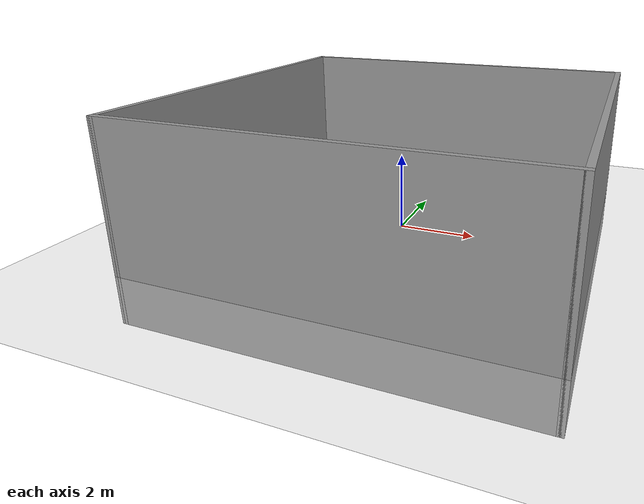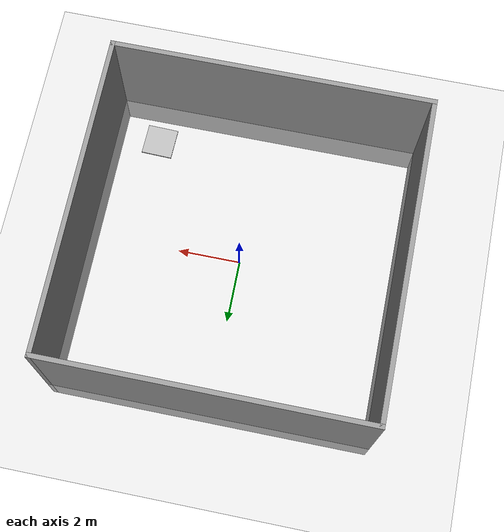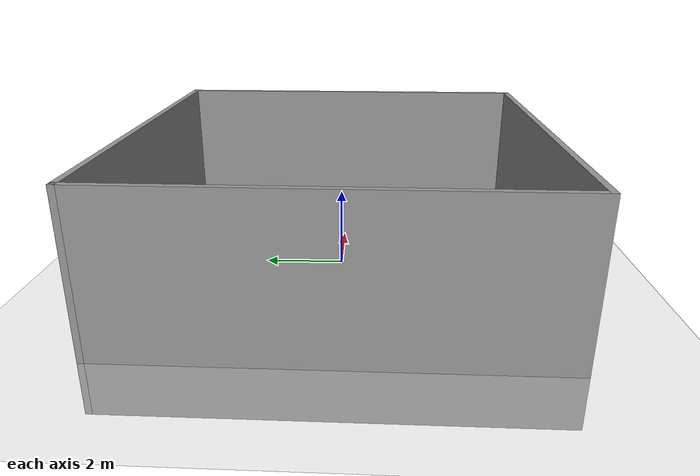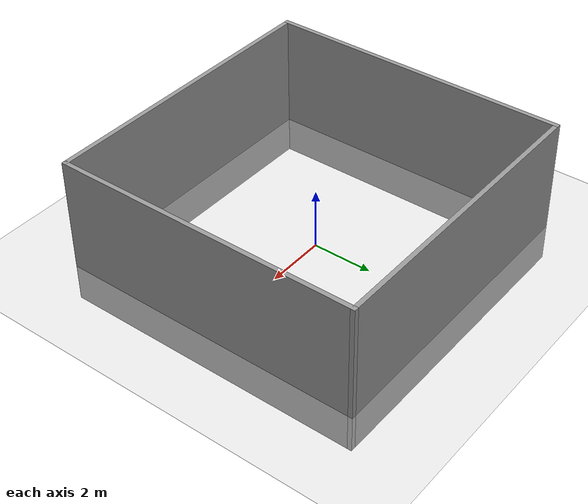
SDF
<sdf version="1.7">
 <world name="default">
  <model name="ground_plane">
   <static>1</static>
   <link name="link">
    <collision name="collision">
     <geometry><plane><normal>0 0 1</normal><size>100 100</size></plane></geometry>
     <surface><friction><ode><mu>100</mu><mu2>50</mu2></ode></friction></surface>
    </collision>
    <visual name="visual">
     <cast_shadows>0</cast_shadows>
     <geometry><plane><normal>0 0 1</normal><size>100 100</size></plane></geometry>
     <material>
      <script><uri>file://media/materials/scripts/gazebo.material</uri><name>Gazebo/Grey</name></script>
     </material>
    </visual>
   </link>
  </model>
  <model name="Indoor_emptyroom">
   <link name="Wall_31">
    <collision name="Wall_31_Collision">
     <geometry><box><size>10.15 0.15 5</size></box></geometry>
     <pose>0 0 1.25 0 -0 0</pose>
    </collision>
    <visual name="Wall_31_Visual">
     <pose>0 0 1.25 0 -0 0</pose>
     <geometry><box><size>10.15 0.15 5</size></box></geometry>
     <material>
      <script><uri>file://media/materials/scripts/gazebo.material</uri><name>Gazebo/Grey</name></script>
      <ambient>1 1 1 1</ambient>
     </material>
     <meta><layer>0</layer></meta>
    </visual>
    <pose>0 -5 0 0 -0 0</pose>
   </link>
   <link name="Wall_32">
    <collision name="Wall_32_Collision">
     <geometry><box><size>10.15 0.15 5</size></box></geometry>
     <pose>0 0 1.25 0 -0 0</pose>
    </collision>
    <visual name="Wall_32_Visual">
     <pose>0 0 1.25 0 -0 0</pose>
     <geometry><box><size>10.15 0.15 5</size></box></geometry>
     <material>
      <script><uri>file://media/materials/scripts/gazebo.material</uri><name>Gazebo/Grey</name></script>
      <ambient>1 1 1 1</ambient>
     </material>
     <meta><layer>0</layer></meta>
    </visual>
    <pose>5 0 0 0 -0 1.5708</pose>
   </link>
   <link name="Wall_33">
    <collision name="Wall_33_Collision">
     <geometry><box><size>10.15 0.15 5</size></box></geometry>
     <pose>0 0 1.25 0 -0 0</pose>
    </collision>
    <visual name="Wall_33_Visual">
     <pose>0 0 1.25 0 -0 0</pose>
     <geometry><box><size>10.15 0.15 5</size></box></geometry>
     <material>
      <script><uri>file://media/materials/scripts/gazebo.material</uri><name>Gazebo/Grey</name></script>
      <ambient>1 1 1 1</ambient>
     </material>
     <meta><layer>0</layer></meta>
    </visual>
    <pose>0 5 0 0 -0 3.14159</pose>
   </link>
   <link name="Wall_34">
    <collision name="Wall_34_Collision">
     <geometry><box><size>10.15 0.15 5</size></box></geometry>
     <pose>0 0 1.25 0 -0 0</pose>
    </collision>
    <visual name="Wall_34_Visual">
     <pose>0 0 1.25 0 -0 0</pose>
     <geometry><box><size>10.15 0.15 5</size></box></geometry>
     <material>
      <script><uri>file://media/materials/scripts/gazebo.material</uri><name>Gazebo/Grey</name></script>
      <ambient>1 1 1 1</ambient>
     </material>
     <meta><layer>0</layer></meta>
    </visual>
    <pose>-5 0 0 0 -0 -1.5708</pose>
   </link>
   <static>1</static>
  </model>
  <model name="landing-sign_clone">
   <static>1</static>
   <pose>3.46647 -3.6481 0 0 0 -1.59803</pose>
   <link name="link">
    <collision name="collision"><geometry><box><size>1 1 0.05</size></box></geometry></collision>
    <visual name="visual">
     <geometry><box><size>1 1 0.05</size></box></geometry>
     <material>
      <script>
       <uri>model://landing-sign/materials/scripts/landing.material</uri>
       <name>Gazebo/LandingPlatform</name>
      </script>
     </material>
    </visual>
   </link>
  </model>
  <model name="asphalt_plane">
   <static>1</static>
   <link name="link">
    <collision name="collision"><geometry><box><size>200 200 0.1</size></box></geometry></collision>
    <visual name="visual">
     <cast_shadows>0</cast_shadows>
     <transparency>1</transparency>
     <geometry><box><size>200 200 0.1</size></box></geometry>
     <material>
      <script>
       <uri>model://asphalt_plane/materials/scripts</uri>
       <uri>model://asphalt_plane/materials/textures</uri>
       <name>vrc/asphalt</name>
      </script>
     </material>
    </visual>
   </link>
   <pose>3.87759 -1.81498 3.8 0 -0 0</pose>
  </model>
  <model name="asphalt_plane">
   <static>1</static>
   <link name="link">
    <collision name="collision"><geometry><box><size>200 200 0.1</size></box></geometry></collision>
    <visual name="visual">
     <cast_shadows>0</cast_shadows>
     <transparency>1</transparency>
     <geometry><box><size>200 200 0.1</size></box></geometry>
     <material>
      <script>
       <uri>model://asphalt_plane/materials/scripts</uri>
       <uri>model://asphalt_plane/materials/textures</uri>
       <name>vrc/asphalt</name>
      </script>
     </material>
    </visual>
   </link>
   <pose>3.87759 -1.81498 3.8 0 -0 0</pose>
  </model>
 </world>
</sdf>
